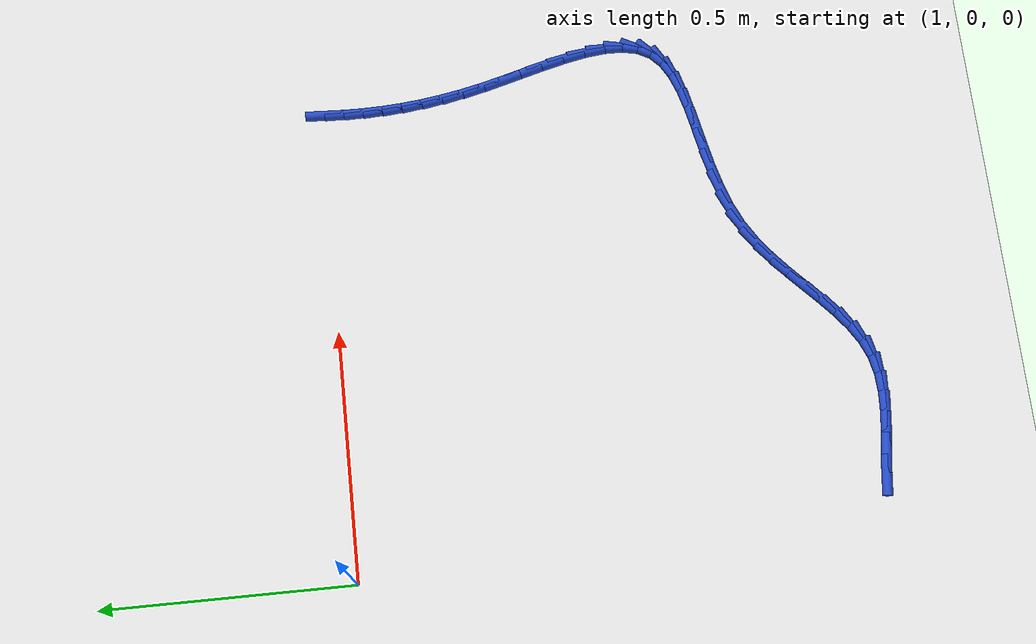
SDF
<sdf version="1.6">
 <world name="default">
  <model name="ground_plane">
   <static>1</static>
   <link name="link">
    <collision name="collision">
     <geometry><plane><normal>0 0 1</normal><size>100 100</size></plane></geometry>
     <surface><friction><ode><mu>100</mu><mu2>50</mu2></ode></friction></surface>
    </collision>
    <visual name="visual">
     <cast_shadows>0</cast_shadows>
     <geometry><plane><normal>0 0 1</normal><size>100 100</size></plane></geometry>
     <material>
      <script><uri>file://media/materials/scripts/gazebo.material</uri><name>Gazebo/WhiteGlow</name></script>
     </material>
    </visual>
   </link>
  </model>
  <model name="line">
   <link name="link_85">
    <pose>1.9609263069628102 -0.007367541686078638 0.01 0 1.57 1.5277031477358884</pose>
    <collision name="collision">
     <geometry><cylinder><radius>0.01</radius><length>0.08</length></cylinder></geometry>
    </collision>
    <visual name="visual">
     <material>
      <script><name>Gazebo/Blue</name><uri>file://media/materials/scripts/gazebo.material</uri></script>
     </material>
     <geometry><cylinder><radius>0.01</radius><length>0.08</length></cylinder></geometry>
    </visual>
   </link>
   <link name="link_86">
    <pose>1.959232616081929 -0.04664620204262017 0.01 0 1.57 1.5615593873324645</pose>
    <collision name="collision">
     <geometry><cylinder><radius>0.01</radius><length>0.08</length></cylinder></geometry>
    </collision>
    <visual name="visual">
     <material>
      <script><name>Gazebo/Blue</name><uri>file://media/materials/scripts/gazebo.material</uri></script>
     </material>
     <geometry><cylinder><radius>0.01</radius><length>0.08</length></cylinder></geometry>
    </visual>
   </link>
   <link name="link_87">
    <pose>1.9588699675440464 -0.08590576690685787 0.01 0 1.57 -1.5436779726283616</pose>
    <collision name="collision">
     <geometry><cylinder><radius>0.01</radius><length>0.08</length></cylinder></geometry>
    </collision>
    <visual name="visual">
     <material>
      <script><name>Gazebo/Blue</name><uri>file://media/materials/scripts/gazebo.material</uri></script>
     </material>
     <geometry><cylinder><radius>0.01</radius><length>0.08</length></cylinder></geometry>
    </visual>
   </link>
   <link name="link_88">
    <pose>1.959940253218078 -0.12536329777583005 0.01 0 1.57 -1.5055531009432017</pose>
    <collision name="collision">
     <geometry><cylinder><radius>0.01</radius><length>0.08</length></cylinder></geometry>
    </collision>
    <visual name="visual">
     <material>
      <script><name>Gazebo/Blue</name><uri>file://media/materials/scripts/gazebo.material</uri></script>
     </material>
     <geometry><cylinder><radius>0.01</radius><length>0.08</length></cylinder></geometry>
    </visual>
   </link>
   <link name="link_89">
    <pose>1.9625453649729387 -0.16523585614657557 0.01 0 1.57 -1.466452154099231</pose>
    <collision name="collision">
     <geometry><cylinder><radius>0.01</radius><length>0.08</length></cylinder></geometry>
    </collision>
    <visual name="visual">
     <material>
      <script><name>Gazebo/Blue</name><uri>file://media/materials/scripts/gazebo.material</uri></script>
     </material>
     <geometry><cylinder><radius>0.01</radius><length>0.08</length></cylinder></geometry>
    </visual>
   </link>
   <link name="link_90">
    <pose>1.9667871946775417 -0.20574050351613113 0.01 0 1.57 -1.427175575508351</pose>
    <collision name="collision">
     <geometry><cylinder><radius>0.01</radius><length>0.08</length></cylinder></geometry>
    </collision>
    <visual name="visual">
     <material>
      <script><name>Gazebo/Blue</name><uri>file://media/materials/scripts/gazebo.material</uri></script>
     </material>
     <geometry><cylinder><radius>0.01</radius><length>0.08</length></cylinder></geometry>
    </visual>
   </link>
   <link name="link_91">
    <pose>1.9727676342008045 -0.24709430138153576 0.01 0 1.57 -1.3884746018303582</pose>
    <collision name="collision">
     <geometry><cylinder><radius>0.01</radius><length>0.08</length></cylinder></geometry>
    </collision>
    <visual name="visual">
     <material>
      <script><name>Gazebo/Blue</name><uri>file://media/materials/scripts/gazebo.material</uri></script>
     </material>
     <geometry><cylinder><radius>0.01</radius><length>0.08</length></cylinder></geometry>
    </visual>
   </link>
   <link name="link_92">
    <pose>1.9805885754116395 -0.2895143112398276 0.01 0 1.57 -1.3510048448109573</pose>
    <collision name="collision">
     <geometry><cylinder><radius>0.01</radius><length>0.08</length></cylinder></geometry>
    </collision>
    <visual name="visual">
     <material>
      <script><name>Gazebo/Blue</name><uri>file://media/materials/scripts/gazebo.material</uri></script>
     </material>
     <geometry><cylinder><radius>0.01</radius><length>0.08</length></cylinder></geometry>
    </visual>
   </link>
   <link name="link_93">
    <pose>1.9903519101789628 -0.3332175945880449 0.01 0 1.57 -1.316937560966134</pose>
    <collision name="collision">
     <geometry><cylinder><radius>0.01</radius><length>0.08</length></cylinder></geometry>
    </collision>
    <visual name="visual">
     <material>
      <script><name>Gazebo/Blue</name><uri>file://media/materials/scripts/gazebo.material</uri></script>
     </material>
     <geometry><cylinder><radius>0.01</radius><length>0.08</length></cylinder></geometry>
    </visual>
   </link>
   <link name="link_94">
    <pose>2.0020586137711405 -0.3783377219072846 0.01 0 1.57 -1.2988861251615438</pose>
    <collision name="collision">
     <geometry><cylinder><radius>0.01</radius><length>0.08</length></cylinder></geometry>
    </collision>
    <visual name="visual">
     <material>
      <script><name>Gazebo/Blue</name><uri>file://media/materials/scripts/gazebo.material</uri></script>
     </material>
     <geometry><cylinder><radius>0.01</radius><length>0.08</length></cylinder></geometry>
    </visual>
   </link>
   <link name="link_95">
    <pose>2.0148796307663535 -0.4243215569801443 0.01 0 1.57 -1.3012096727508344</pose>
    <collision name="collision">
     <geometry><cylinder><radius>0.01</radius><length>0.08</length></cylinder></geometry>
    </collision>
    <visual name="visual">
     <material>
      <script><name>Gazebo/Blue</name><uri>file://media/materials/scripts/gazebo.material</uri></script>
     </material>
     <geometry><cylinder><radius>0.01</radius><length>0.08</length></cylinder></geometry>
    </visual>
   </link>
   <link name="link_96">
    <pose>2.027578178514653 -0.47027863989501856 0.01 0 1.57 -1.3242073748985568</pose>
    <collision name="collision">
     <geometry><cylinder><radius>0.01</radius><length>0.08</length></cylinder></geometry>
    </collision>
    <visual name="visual">
     <material>
      <script><name>Gazebo/Blue</name><uri>file://media/materials/scripts/gazebo.material</uri></script>
     </material>
     <geometry><cylinder><radius>0.01</radius><length>0.08</length></cylinder></geometry>
    </visual>
   </link>
   <link name="link_97">
    <pose>2.038914649125346 -0.5153161733426989 0.01 0 1.57 -1.3714051287247226</pose>
    <collision name="collision">
     <geometry><cylinder><radius>0.01</radius><length>0.08</length></cylinder></geometry>
    </collision>
    <visual name="visual">
     <material>
      <script><name>Gazebo/Blue</name><uri>file://media/materials/scripts/gazebo.material</uri></script>
     </material>
     <geometry><cylinder><radius>0.01</radius><length>0.08</length></cylinder></geometry>
    </visual>
   </link>
   <link name="link_98">
    <pose>2.047649434707736 -0.5585413600139763 0.01 0 1.57 -1.45061114638508</pose>
    <collision name="collision">
     <geometry><cylinder><radius>0.01</radius><length>0.08</length></cylinder></geometry>
    </collision>
    <visual name="visual">
     <material>
      <script><name>Gazebo/Blue</name><uri>file://media/materials/scripts/gazebo.material</uri></script>
     </material>
     <geometry><cylinder><radius>0.01</radius><length>0.08</length></cylinder></geometry>
    </visual>
   </link>
   <link name="link_99">
    <pose>2.0525429273711286 -0.5990614025996428 0.01 0 1.57 1.5657205989556948</pose>
    <collision name="collision">
     <geometry><cylinder><radius>0.01</radius><length>0.08</length></cylinder></geometry>
    </collision>
    <visual name="visual">
     <material>
      <script><name>Gazebo/Blue</name><uri>file://media/materials/scripts/gazebo.material</uri></script>
     </material>
     <geometry><cylinder><radius>0.01</radius><length>0.08</length></cylinder></geometry>
    </visual>
   </link>
   <link name="link_100">
    <pose>2.05235551922483 -0.6359835037904885 0.01 0 1.57 1.3727591287541245</pose>
    <collision name="collision">
     <geometry><cylinder><radius>0.01</radius><length>0.08</length></cylinder></geometry>
    </collision>
    <visual name="visual">
     <material>
      <script><name>Gazebo/Blue</name><uri>file://media/materials/scripts/gazebo.material</uri></script>
     </material>
     <geometry><cylinder><radius>0.01</radius><length>0.08</length></cylinder></geometry>
    </visual>
   </link>
   <link name="link_101">
    <pose>2.045847602378144 -0.6684148662773048 0.01 0 1.57 1.0913451657512743</pose>
    <collision name="collision">
     <geometry><cylinder><radius>0.01</radius><length>0.08</length></cylinder></geometry>
    </collision>
    <visual name="visual">
     <material>
      <script><name>Gazebo/Blue</name><uri>file://media/materials/scripts/gazebo.material</uri></script>
     </material>
     <geometry><cylinder><radius>0.01</radius><length>0.08</length></cylinder></geometry>
    </visual>
   </link>
   <link name="link_102">
    <pose>2.0317834404854804 -0.6954658339065443 0.01 0 1.57 0.7675276500604542</pose>
    <collision name="collision">
     <geometry><cylinder><radius>0.01</radius><length>0.08</length></cylinder></geometry>
    </collision>
    <visual name="visual">
     <material>
      <script><name>Gazebo/Blue</name><uri>file://media/materials/scripts/gazebo.material</uri></script>
     </material>
     <geometry><cylinder><radius>0.01</radius><length>0.08</length></cylinder></geometry>
    </visual>
   </link>
   <link name="link_103">
    <pose>2.009643750027543 -0.7168280403690866 0.01 0 1.57 0.5177478909237357</pose>
    <collision name="collision">
     <geometry><cylinder><radius>0.01</radius><length>0.08</length></cylinder></geometry>
    </collision>
    <visual name="visual">
     <material>
      <script><name>Gazebo/Blue</name><uri>file://media/materials/scripts/gazebo.material</uri></script>
     </material>
     <geometry><cylinder><radius>0.01</radius><length>0.08</length></cylinder></geometry>
    </visual>
   </link>
   <link name="link_104">
    <pose>1.9804593258913652 -0.7334507664786885 0.01 0 1.57 0.35559265468118156</pose>
    <collision name="collision">
     <geometry><cylinder><radius>0.01</radius><length>0.08</length></cylinder></geometry>
    </collision>
    <visual name="visual">
     <material>
      <script><name>Gazebo/Blue</name><uri>file://media/materials/scripts/gazebo.material</uri></script>
     </material>
     <geometry><cylinder><radius>0.01</radius><length>0.08</length></cylinder></geometry>
    </visual>
   </link>
   <link name="link_105">
    <pose>1.9454633936827843 -0.746447534038492 0.01 0 1.57 0.25897876699022415</pose>
    <collision name="collision">
     <geometry><cylinder><radius>0.01</radius><length>0.08</length></cylinder></geometry>
    </collision>
    <visual name="visual">
     <material>
      <script><name>Gazebo/Blue</name><uri>file://media/materials/scripts/gazebo.material</uri></script>
     </material>
     <geometry><cylinder><radius>0.01</radius><length>0.08</length></cylinder></geometry>
    </visual>
   </link>
   <link name="link_106">
    <pose>1.9058891790076355 -0.7569318648516398 0.01 0 1.57 0.2086065883803087</pose>
    <collision name="collision">
     <geometry><cylinder><radius>0.01</radius><length>0.08</length></cylinder></geometry>
    </collision>
    <visual name="visual">
     <material>
      <script><name>Gazebo/Blue</name><uri>file://media/materials/scripts/gazebo.material</uri></script>
     </material>
     <geometry><cylinder><radius>0.01</radius><length>0.08</length></cylinder></geometry>
    </visual>
   </link>
   <link name="link_107">
    <pose>1.862969907471753 -0.7660172807212743 0.01 0 1.57 0.19298881451127234</pose>
    <collision name="collision">
     <geometry><cylinder><radius>0.01</radius><length>0.08</length></cylinder></geometry>
    </collision>
    <visual name="visual">
     <material>
      <script><name>Gazebo/Blue</name><uri>file://media/materials/scripts/gazebo.material</uri></script>
     </material>
     <geometry><cylinder><radius>0.01</radius><length>0.08</length></cylinder></geometry>
    </visual>
   </link>
   <link name="link_108">
    <pose>1.8179388046809732 -0.7748173034505381 0.01 0 1.57 0.20672332410948482</pose>
    <collision name="collision">
     <geometry><cylinder><radius>0.01</radius><length>0.08</length></cylinder></geometry>
    </collision>
    <visual name="visual">
     <material>
      <script><name>Gazebo/Blue</name><uri>file://media/materials/scripts/gazebo.material</uri></script>
     </material>
     <geometry><cylinder><radius>0.01</radius><length>0.08</length></cylinder></geometry>
    </visual>
   </link>
   <link name="link_109">
    <pose>1.7720290962411311 -0.784445454842574 0.01 0 1.57 0.24871525942448186</pose>
    <collision name="collision">
     <geometry><cylinder><radius>0.01</radius><length>0.08</length></cylinder></geometry>
    </collision>
    <visual name="visual">
     <material>
      <script><name>Gazebo/Blue</name><uri>file://media/materials/scripts/gazebo.material</uri></script>
     </material>
     <geometry><cylinder><radius>0.01</radius><length>0.08</length></cylinder></geometry>
    </visual>
   </link>
   <link name="link_110">
    <pose>1.7264740077580607 -0.7960152567005241 0.01 0 1.57 0.3211204949917531</pose>
    <collision name="collision">
     <geometry><cylinder><radius>0.01</radius><length>0.08</length></cylinder></geometry>
    </collision>
    <visual name="visual">
     <material>
      <script><name>Gazebo/Blue</name><uri>file://media/materials/scripts/gazebo.material</uri></script>
     </material>
     <geometry><cylinder><radius>0.01</radius><length>0.08</length></cylinder></geometry>
    </visual>
   </link>
   <link name="link_111">
    <pose>1.6825067648376004 -0.8106402308275313 0.01 0 1.57 0.4281188885713341</pose>
    <collision name="collision">
     <geometry><cylinder><radius>0.01</radius><length>0.08</length></cylinder></geometry>
    </collision>
    <visual name="visual">
     <material>
      <script><name>Gazebo/Blue</name><uri>file://media/materials/scripts/gazebo.material</uri></script>
     </material>
     <geometry><cylinder><radius>0.01</radius><length>0.08</length></cylinder></geometry>
    </visual>
   </link>
   <link name="link_112">
    <pose>1.641350854350439 -0.8294215746643472 0.01 0 1.57 0.5503155385285533</pose>
    <collision name="collision">
     <geometry><cylinder><radius>0.01</radius><length>0.08</length></cylinder></geometry>
    </collision>
    <visual name="visual">
     <material>
      <script><name>Gazebo/Blue</name><uri>file://media/materials/scripts/gazebo.material</uri></script>
     </material>
     <geometry><cylinder><radius>0.01</radius><length>0.08</length></cylinder></geometry>
    </visual>
   </link>
   <link name="link_113">
    <pose>1.6035572611906457 -0.8526094348792348 0.01 0 1.57 0.6475923498457024</pose>
    <collision name="collision">
     <geometry><cylinder><radius>0.01</radius><length>0.08</length></cylinder></geometry>
    </collision>
    <visual name="visual">
     <material>
      <script><name>Gazebo/Blue</name><uri>file://media/materials/scripts/gazebo.material</uri></script>
     </material>
     <geometry><cylinder><radius>0.01</radius><length>0.08</length></cylinder></geometry>
    </visual>
   </link>
   <link name="link_114">
    <pose>1.5685804557772969 -0.8790663198532378 0.01 0 1.57 0.7145843804362589</pose>
    <collision name="collision">
     <geometry><cylinder><radius>0.01</radius><length>0.08</length></cylinder></geometry>
    </collision>
    <visual name="visual">
     <material>
      <script><name>Gazebo/Blue</name><uri>file://media/materials/scripts/gazebo.material</uri></script>
     </material>
     <geometry><cylinder><radius>0.01</radius><length>0.08</length></cylinder></geometry>
    </visual>
   </link>
   <link name="link_115">
    <pose>1.5357739607521996 -0.9075269886271589 0.01 0 1.57 0.7509642620244827</pose>
    <collision name="collision">
     <geometry><cylinder><radius>0.01</radius><length>0.08</length></cylinder></geometry>
    </collision>
    <visual name="visual">
     <material>
      <script><name>Gazebo/Blue</name><uri>file://media/materials/scripts/gazebo.material</uri></script>
     </material>
     <geometry><cylinder><radius>0.01</radius><length>0.08</length></cylinder></geometry>
    </visual>
   </link>
   <link name="link_116">
    <pose>1.5044912987571641 -0.9367262002418002 0.01 0 1.57 0.7560758866484426</pose>
    <collision name="collision">
     <geometry><cylinder><radius>0.01</radius><length>0.08</length></cylinder></geometry>
    </collision>
    <visual name="visual">
     <material>
      <script><name>Gazebo/Blue</name><uri>file://media/materials/scripts/gazebo.material</uri></script>
     </material>
     <geometry><cylinder><radius>0.01</radius><length>0.08</length></cylinder></geometry>
    </visual>
   </link>
   <link name="link_117">
    <pose>1.4740859924339973 -0.9653987137379645 0.01 0 1.57 0.7277309756041553</pose>
    <collision name="collision">
     <geometry><cylinder><radius>0.01</radius><length>0.08</length></cylinder></geometry>
    </collision>
    <visual name="visual">
     <material>
      <script><name>Gazebo/Blue</name><uri>file://media/materials/scripts/gazebo.material</uri></script>
     </material>
     <geometry><cylinder><radius>0.01</radius><length>0.08</length></cylinder></geometry>
    </visual>
   </link>
   <link name="link_118">
    <pose>1.4439115644245089 -0.9922792881564549 0.01 0 1.57 0.6616773613531324</pose>
    <collision name="collision">
     <geometry><cylinder><radius>0.01</radius><length>0.08</length></cylinder></geometry>
    </collision>
    <visual name="visual">
     <material>
      <script><name>Gazebo/Blue</name><uri>file://media/materials/scripts/gazebo.material</uri></script>
     </material>
     <geometry><cylinder><radius>0.01</radius><length>0.08</length></cylinder></geometry>
    </visual>
   </link>
   <link name="link_119">
    <pose>1.4133215373705061 -1.0161026825380737 0.01 0 1.57 0.5521762760655974</pose>
    <collision name="collision">
     <geometry><cylinder><radius>0.01</radius><length>0.08</length></cylinder></geometry>
    </collision>
    <visual name="visual">
     <material>
      <script><name>Gazebo/Blue</name><uri>file://media/materials/scripts/gazebo.material</uri></script>
     </material>
     <geometry><cylinder><radius>0.01</radius><length>0.08</length></cylinder></geometry>
    </visual>
   </link>
   <link name="link_120">
    <pose>1.3816694339137985 -1.035603655923624 0.01 0 1.57 0.3951240690922994</pose>
    <collision name="collision">
     <geometry><cylinder><radius>0.01</radius><length>0.08</length></cylinder></geometry>
    </collision>
    <visual name="visual">
     <material>
      <script><name>Gazebo/Blue</name><uri>file://media/materials/scripts/gazebo.material</uri></script>
     </material>
     <geometry><cylinder><radius>0.01</radius><length>0.08</length></cylinder></geometry>
    </visual>
   </link>
   <link name="link_121">
    <pose>1.3483087766961934 -1.0495169673539084 0.01 0 1.57 0.2068130443718413</pose>
    <collision name="collision">
     <geometry><cylinder><radius>0.01</radius><length>0.08</length></cylinder></geometry>
    </collision>
    <visual name="visual">
     <material>
      <script><name>Gazebo/Blue</name><uri>file://media/materials/scripts/gazebo.material</uri></script>
     </material>
     <geometry><cylinder><radius>0.01</radius><length>0.08</length></cylinder></geometry>
    </visual>
   </link>
   <link name="link_122">
    <pose>1.3127394433944186 -1.0569798743410392 0.01 0 1.57 0.05072855389287353</pose>
    <collision name="collision">
     <geometry><cylinder><radius>0.01</radius><length>0.08</length></cylinder></geometry>
    </collision>
    <visual name="visual">
     <material>
      <script><name>Gazebo/Blue</name><uri>file://media/materials/scripts/gazebo.material</uri></script>
     </material>
     <geometry><cylinder><radius>0.01</radius><length>0.08</length></cylinder></geometry>
    </visual>
   </link>
   <link name="link_123">
    <pose>1.2751017082276102 -1.0588908217009856 0.01 0 1.57 -0.057336063531208695</pose>
    <collision name="collision">
     <geometry><cylinder><radius>0.01</radius><length>0.08</length></cylinder></geometry>
    </collision>
    <visual name="visual">
     <material>
      <script><name>Gazebo/Blue</name><uri>file://media/materials/scripts/gazebo.material</uri></script>
     </material>
     <geometry><cylinder><radius>0.01</radius><length>0.08</length></cylinder></geometry>
    </visual>
   </link>
   <link name="link_124">
    <pose>1.2357109552738397 -1.0566298328340942 0.01 0 1.57 -0.12313314515627777</pose>
    <collision name="collision">
     <geometry><cylinder><radius>0.01</radius><length>0.08</length></cylinder></geometry>
    </collision>
    <visual name="visual">
     <material>
      <script><name>Gazebo/Blue</name><uri>file://media/materials/scripts/gazebo.material</uri></script>
     </material>
     <geometry><cylinder><radius>0.01</radius><length>0.08</length></cylinder></geometry>
    </visual>
   </link>
   <link name="link_125">
    <pose>1.1948825728980494 -1.0515769429302562 0.01 0 1.57 -0.15290113031397373</pose>
    <collision name="collision">
     <geometry><cylinder><radius>0.01</radius><length>0.08</length></cylinder></geometry>
    </collision>
    <visual name="visual">
     <material>
      <script><name>Gazebo/Blue</name><uri>file://media/materials/scripts/gazebo.material</uri></script>
     </material>
     <geometry><cylinder><radius>0.01</radius><length>0.08</length></cylinder></geometry>
    </visual>
   </link>
   <link name="link_126">
    <pose>1.1529319494651808 -1.0451121871793607 0.01 0 1.57 -0.15078707003500166</pose>
    <collision name="collision">
     <geometry><cylinder><radius>0.01</radius><length>0.08</length></cylinder></geometry>
    </collision>
    <visual name="visual">
     <material>
      <script><name>Gazebo/Blue</name><uri>file://media/materials/scripts/gazebo.material</uri></script>
     </material>
     <geometry><cylinder><radius>0.01</radius><length>0.08</length></cylinder></geometry>
    </visual>
   </link>
   <link name="link_127">
    <pose>1.1101744733401777 -1.0386156007712986 0.01 0 1.57 -0.11848308503232756</pose>
    <collision name="collision">
     <geometry><cylinder><radius>0.01</radius><length>0.08</length></cylinder></geometry>
    </collision>
    <visual name="visual">
     <material>
      <script><name>Gazebo/Blue</name><uri>file://media/materials/scripts/gazebo.material</uri></script>
     </material>
     <geometry><cylinder><radius>0.01</radius><length>0.08</length></cylinder></geometry>
    </visual>
   </link>
  </model>
 </world>
</sdf>
